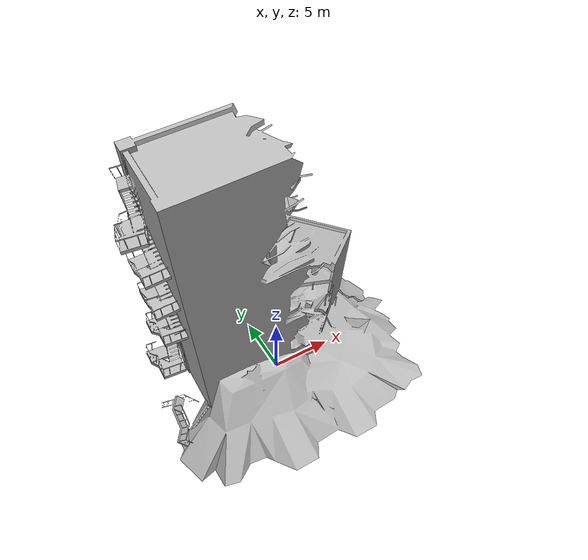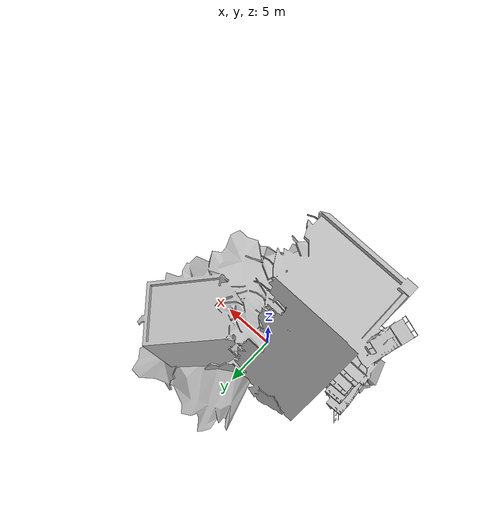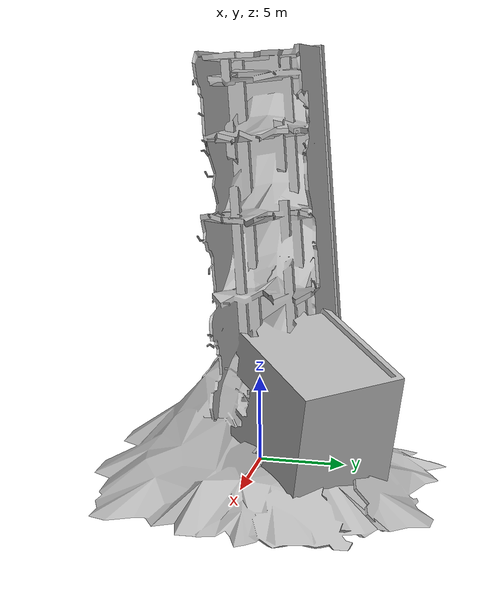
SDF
<?xml version="1.0" ?>
<sdf version="1.6">
    <model name="collapsed_industrial">
        <static>true</static>
        <link name="link">
            <collision name="collision">
                <geometry>
                    <mesh>
                        <uri>model://collapsed_industrial_building/meshes/collapsed_industrial.dae</uri>
                    </mesh>
                </geometry>
            </collision>
            <visual name="visual">
                <geometry>
                    <mesh>
                        <uri>model://collapsed_industrial_building/meshes/collapsed_industrial.dae</uri>
                    </mesh>
                </geometry>
            </visual>
        </link>
    </model>
</sdf>
